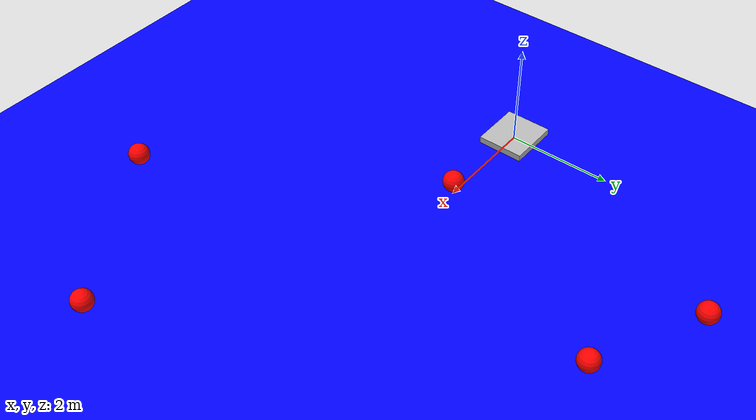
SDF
<?xml version="1.0"?>
<sdf version="1.7">

    <world name="my_world">
        <model name="water_plane">
            <static>true</static>
            <link name="link">
                <visual name="water plane">
                    <geometry>
                        <plane>
                            <size>100 100</size>
                            <normal>0 0 1</normal>
                        </plane>
                    </geometry>
                    <material>
                        <ambient>0 0 1 0.7</ambient>
                        <diffuse>0 0 1 0.7</diffuse>
                        <specular>0 0 1 0.7</specular>
                    </material>
                </visual>
            </link>
        </model>
        <model name="red_sphere">
            <pose>2 0 0.3 0 0 0</pose>
            <static>true</static>
            <link name="link">
                <visual name="visual">
                    <geometry>
                        <sphere>
                            <radius>0.2</radius>
                        </sphere>
                    </geometry>
                    <material>
                        <ambient>1 0 0 1</ambient>
                        <diffuse>1 0 0 1</diffuse>
                        <specular>1 0 0 1</specular>
                    </material>
                </visual>
                <collision name="collision">
                    <geometry>
                        <sphere>
                            <radius>0.2</radius>
                        </sphere>
                    </geometry>
                </collision>
                <inertial>
                    <mass>1.0</mass>
                    <inertia>
                        <ixx>0.001</ixx>
                        <ixy>0.0</ixy>
                        <ixz>0.0</ixz>
                        <iyy>0.001</iyy>
                        <iyz>0.0</iyz>
                        <izz>0.001</izz>
                    </inertia>
                </inertial>
            </link>
        </model>

        <model name="red_sphere2">
            <pose>5 -5 0.3 0 0 0</pose>
            <static>true</static>
            <link name="link">
                <visual name="visual">
                    <geometry>
                        <sphere>
                            <radius>0.2</radius>
                        </sphere>
                    </geometry>
                    <material>
                        <ambient>1 0 0 1</ambient>
                        <diffuse>1 0 0 1</diffuse>
                        <specular>1 0 0 1</specular>
                    </material>
                </visual>
                <collision name="collision">
                    <geometry>
                        <sphere>
                            <radius>0.4</radius>
                        </sphere>
                    </geometry>
                </collision>
                <inertial>
                    <mass>1.0</mass>
                    <inertia>
                        <ixx>0.001</ixx>
                        <ixy>0.0</ixy>
                        <ixz>0.0</ixz>
                        <iyy>0.001</iyy>
                        <iyz>0.0</iyz>
                        <izz>0.001</izz>
                    </inertia>
                </inertial>
            </link>
        </model>

        <model name="red_sphere3">
            <pose>2 5 0.3 0 0 0</pose>
            <static>true</static>
            <link name="link">
                <visual name="visual">
                    <geometry>
                        <sphere>
                            <radius>0.2</radius>
                        </sphere>
                    </geometry>
                    <material>
                        <ambient>1 0 0 1</ambient>
                        <diffuse>1 0 0 1</diffuse>
                        <specular>1 0 0 1</specular>
                    </material>
                </visual>
                <collision name="collision">
                    <geometry>
                        <sphere>
                            <radius>0.4</radius>
                        </sphere>
                    </geometry>
                </collision>
                <inertial>
                    <mass>1.0</mass>
                    <inertia>
                        <ixx>0.001</ixx>
                        <ixy>0.0</ixy>
                        <ixz>0.0</ixz>
                        <iyy>0.001</iyy>
                        <iyz>0.0</iyz>
                        <izz>0.001</izz>
                    </inertia>
                </inertial>
            </link>
        </model>

       <model name="red_sphere4">
            <pose>4 4 0.3 0 0 0</pose>
            <static>true</static>
            <link name="link">
                <visual name="visual">
                    <geometry>
                        <sphere>
                            <radius>0.2</radius>
                        </sphere>
                    </geometry>
                    <material>
                        <ambient>1 0 0 1</ambient>
                        <diffuse>1 0 0 1</diffuse>
                        <specular>1 0 0 1</specular>
                    </material>
                </visual>
                <collision name="collision">
                    <geometry>
                        <sphere>
                            <radius>0.4</radius>
                        </sphere>
                    </geometry>
                </collision>
                <inertial>
                    <mass>1.0</mass>
                    <inertia>
                        <ixx>0.001</ixx>
                        <ixy>0.0</ixy>
                        <ixz>0.0</ixz>
                        <iyy>0.001</iyy>
                        <iyz>0.0</iyz>
                        <izz>0.001</izz>
                    </inertia>
                </inertial>
            </link>
        </model>

        <model name="red_sphere5">
            <pose>8 -3 0.3 0 0 0</pose>
            <static>true</static>
            <link name="link">
                <visual name="visual">
                    <geometry>
                        <sphere>
                            <radius>0.2</radius>
                        </sphere>
                    </geometry>
                    <material>
                        <ambient>1 0 0 1</ambient>
                        <diffuse>1 0 0 1</diffuse>
                        <specular>1 0 0 1</specular>
                    </material>
                </visual>
                <collision name="collision">
                    <geometry>
                        <sphere>
                            <radius>0.4</radius>
                        </sphere>
                    </geometry>
                </collision>
                <inertial>
                    <mass>1.0</mass>
                    <inertia>
                        <ixx>0.001</ixx>
                        <ixy>0.0</ixy>
                        <ixz>0.0</ixz>
                        <iyy>0.001</iyy>
                        <iyz>0.0</iyz>
                        <izz>0.001</izz>
                    </inertia>
                </inertial>
            </link>
        </model>

        <scene>
            <ambient>0.0 1.0 1.0</ambient>
            <background>0 0.7 0.8</background>
        </scene>

        <light type="directional" name="sun">
            <cast_shadows>true</cast_shadows>
            <pose>0 0 10 0 0 0</pose>
            <diffuse>1 1 1 1</diffuse>
            <specular>0.5 0.5 0.5 1</specular>
            <attenuation>
              <range>1000</range>
              <constant>0.9</constant>
              <linear>0.01</linear>
              <quadratic>0.001</quadratic>
            </attenuation>
            <direction>-0.5 0.1 -0.9</direction>
          </light>

        <physics name="1ms" type="ode">
            <max_step_size>0.001</max_step_size>
            <real_time_factor>1.0</real_time_factor>
        </physics>
        <plugin
            filename="ignition-gazebo-physics-system"
            name="ignition::gazebo::systems::Physics">
        </plugin>
        <plugin
            filename="ignition-gazebo-user-commands-system"
            name="ignition::gazebo::systems::UserCommands">
        </plugin>
        <plugin
            filename="ignition-gazebo-scene-broadcaster-system"
            name="ignition::gazebo::systems::SceneBroadcaster">
        </plugin>
        <plugin
            filename="ignition-gazebo-buoyancy-system"
            name="ignition::gazebo::systems::Buoyancy">
            <uniform_fluid_density>1000</uniform_fluid_density>
        </plugin>

        <model name="box_usv">
            <link name="base_link">
                <collision name="collision">
                    <geometry>
                        <box>
                            <size>1 0.9 0.23</size>
                        </box>
                    </geometry>
                </collision>
                <visual name="visual">
                    <geometry>
                        <box>
                            <size>1 0.9 0.23</size>
                        </box>
                    </geometry>
                </visual>
                <inertial>
                    <pose>0.0012 0 -0.05 0 0 0</pose>
                    <!-- Tweaked mass so the USV stays afloat -->
                    <mass>206.65</mass>
                    <inertia>
                        <ixx>4.0985</ixx>
                        <ixy>0</ixy>
                        <ixz>0</ixz>
                        <iyy>4.8728</iyy>
                        <iyz>0</iyz>
                        <izz>6.8029</izz>
                    </inertia>
                </inertial>
            </link>

            <link name="camera_link">
                <pose>0.002 0 0.6 0 0 0</pose>

                <sensor name="camera_sensor" type="camera">
                    <camera>
                    <horizontal_fov>1.047</horizontal_fov>
                    <image>
                        <width>640</width>
                        <height>480</height>
                        <format>R8G8B8</format>
                    </image>
                    <clip>
                        <near>0.1</near>
                        <far>100</far>
                    </clip>
                    </camera>
                    <always_on>true</always_on>
                    <update_rate>30</update_rate>
                    <visualize>true</visualize>
                </sensor>
            </link>

            <!-- thruster_L link -->
            <link name="thruster_L">
                <pose>-0.525 -0.15 0 0 1.57 0</pose>
                <collision name="collision">
                    <geometry>
                        <box>
                            <size>0.1 0.07 0.05</size>
                        </box>
                    </geometry>
                </collision>
                <visual name="visual">
                    <geometry>
                        <box>
                            <size>0.1 0.07 0.05</size>
                        </box>
                    </geometry>
                    <material>
                        <ambient>0.5 0.5 0.5 1</ambient>
                        <diffuse>0.5 0.5 0.5 1</diffuse>
                        <specular>0.5 0.5 0.5 1</specular>
                    </material>
                </visual>
                <inertial>
                    <mass>0.525</mass>
                    <inertia>
                        <ixx>0.00032375</ixx>
                        <ixy>0</ixy>
                        <ixz>0</ixz>
                        <iyy>0.0018594</iyy>
                        <iyz>0</iyz>
                        <izz>0.0019644</izz>
                    </inertia>
                </inertial>
            </link>

            <!-- thruster_L <-> base_link joint -->
            <joint name="joint_propeller_port_L" type="revolute">
                <pose>0 0 0 0 0 0</pose>
                <parent>base_link</parent>
                <child>thruster_L</child>
                <axis>
                    <xyz>0 0 1</xyz>
                </axis>
            </joint>

            <!-- thruster_R link -->
            <link name="thruster_R">
                <pose>-0.525 0.15 0 0 1.57 0</pose>
                <collision name="collision">
                    <geometry>
                        <box>
                            <size>0.1 0.07 0.05</size>
                        </box>
                    </geometry>
                </collision>
                <visual name="visual">
                    <geometry>
                        <box>
                            <size>0.1 0.07 0.05</size>
                        </box>
                    </geometry>
                    <material>
                        <ambient>0.5 0.5 0.5 1</ambient>
                        <diffuse>0.5 0.5 0.5 1</diffuse>
                        <specular>0.5 0.5 0.5 1</specular>
                    </material>
                </visual>
                <inertial>
                    <mass>0.525</mass>
                    <inertia>
                        <ixx>0.00032375</ixx>
                        <ixy>0</ixy>
                        <ixz>0</ixz>
                        <iyy>0.0018594</iyy>
                        <iyz>0</iyz>
                        <izz>0.0019644</izz>
                    </inertia>
                </inertial>

            </link>
            <!-- thruster_R <-> base_link joint -->
            <joint name="joint_propeller_port_R" type="revolute">
                <pose>0 0 0 0 0 0</pose>
                <parent>base_link</parent>
                <child>thruster_R</child>
                <axis>
                    <xyz>0 0 1</xyz>
                </axis>
            </joint>

            <joint name="camera_joint" type="fixed">
                <parent>base_link</parent>
                <child>camera_link</child>
            </joint>

                        <!-- Hydrodynamics plugin -->
            <plugin
                filename="ignition-gazebo-hydrodynamics-system"
                name="ignition::gazebo::systems::Hydrodynamics">
                <link_name>base_link</link_name>
                <xDotU>-0.04876161</xDotU>
                <yDotV>-1.26324739</yDotV>
                <zDotW>-1.26324739</zDotW>
                <kDotP>0</kDotP>
                <mDotQ>-0.3346</mDotQ>
                <nDotR>-0.3346</nDotR>
                <xUabsU>-0.62282</xUabsU>
                <xU>-5</xU>
                <yVabsV>-60.127</yVabsV>
                <yV>-5</yV>
                <zWabsW>-6.0127</zWabsW>
                <zW>-100</zW>
                <kPabsP>-0.001916</kPabsP>
                <kP>-1</kP>
                <mQabsQ>-6.32698957</mQabsQ>
                <mQ>-1</mQ>
                <nRabsR>-6.32698957</nRabsR>
                <nR>-1</nR>
            </plugin>
                        <!-- Thruster plugin -->
            <plugin
                filename="ignition-gazebo-thruster-system"
                name="ignition::gazebo::systems::Thruster">
                <joint_name>joint_propeller_port_L</joint_name>
                <namespace>box_usv</namespace>
                <topic>thruster_L</topic>
                <thrust_coefficient>0.001</thrust_coefficient>
                <fluid_density>1000</fluid_density>
                <propeller_diameter>0.4</propeller_diameter>
            </plugin>
            <plugin
                filename="ignition-gazebo-thruster-system"
                name="ignition::gazebo::systems::Thruster">
                <joint_name>joint_propeller_port_R</joint_name>
                <namespace>box_usv</namespace>
                <topic>thruster_R</topic>
                <thrust_coefficient>0.001</thrust_coefficient>
                <fluid_density>1000</fluid_density>
                <propeller_diameter>0.4</propeller_diameter>
            </plugin>
            <plugin
            filename="ignition-gazebo-sensors-system"
            name="ignition::gazebo::systems::Sensors">
            <render_engine>ogre2</render_engine>
            </plugin>
        </model>
    </world>
</sdf>
